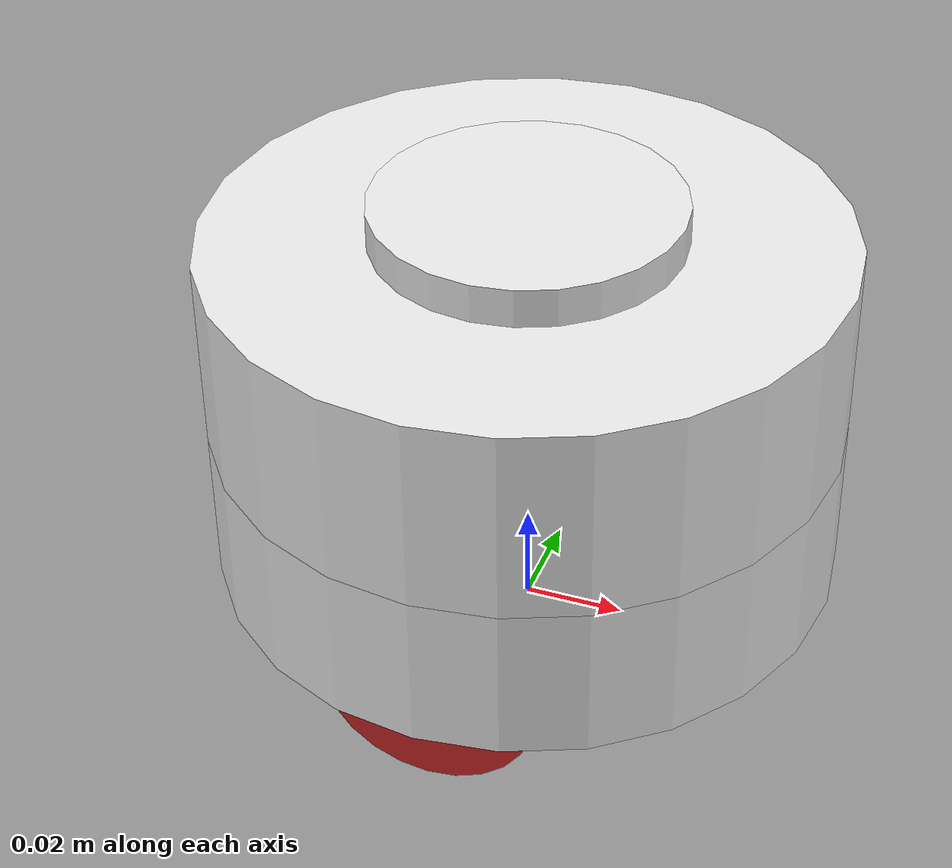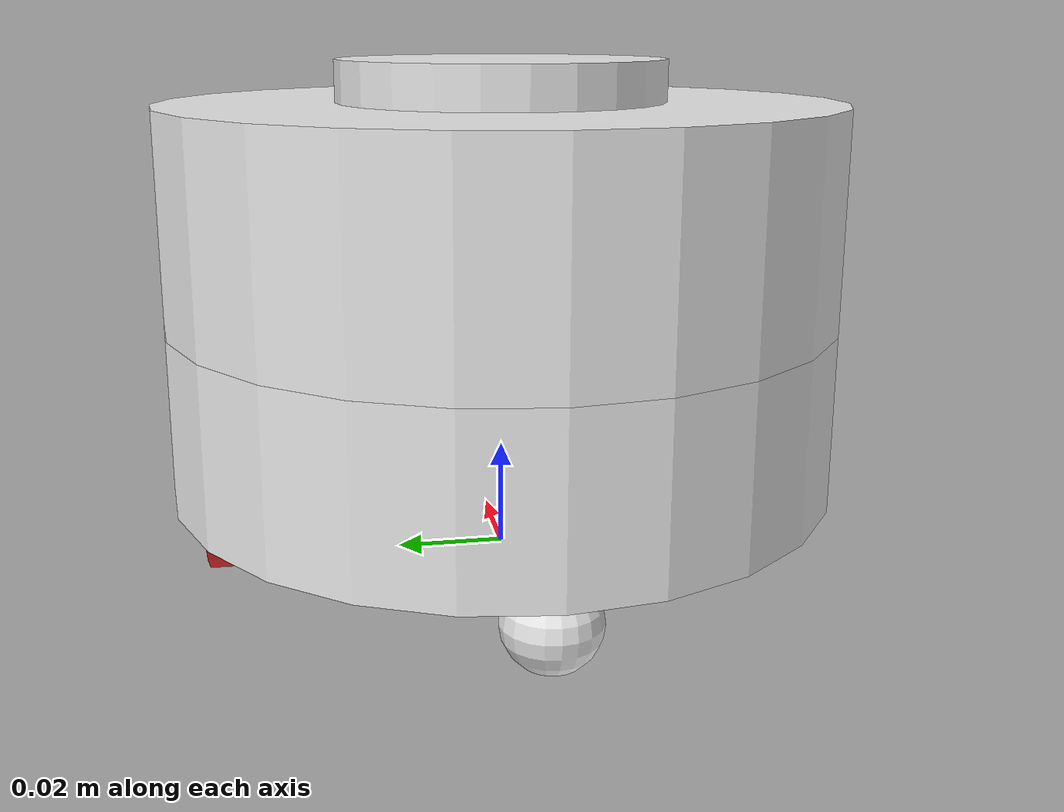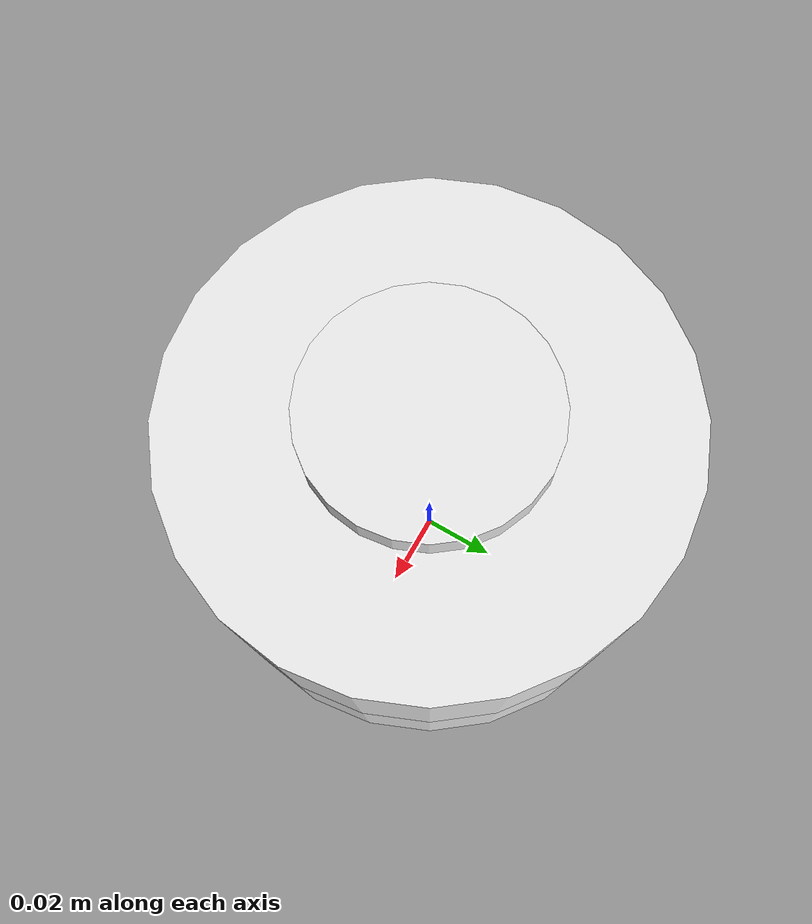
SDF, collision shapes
<sdf version='1.11'>
  <model name='makerspet_mini'>
    <link name='base_footprint'>
      <inertial>
        <pose>-0.0065000000000000006 4.5486881111187414e-19 0.042842857142857141 0 0 0</pose>
        <mass>0.69999999999999996</mass>
        <inertia>
          <ixx>0.00098287151428571402</ixx>
          <ixy>1.4407969591968601e-20</ixy>
          <ixz>-2.6660000000000019e-05</ixz>
          <iyy>0.001413646514285714</iyy>
          <iyz>-5.9552505053259861e-20</iyz>
          <izz>0.00063588000000000002</izz>
        </inertia>
      </inertial>
      <collision name='base_footprint_fixed_joint_lump__base_link_collision'>
        <pose>0 0 0.0309 0 0 0</pose>
        <geometry>
          <cylinder>
            <length>0.032000000000000001</length>
            <radius>0.062</radius>
          </cylinder>
        </geometry>
        <surface>
          <contact>
            <ode/>
          </contact>
          <friction>
            <ode/>
          </friction>
        </surface>
      </collision>
      <collision name='base_footprint_fixed_joint_lump__caster_link_collision_1'>
        <pose>-0.050999999999999997 0 0.0085000000000000006 0 0 0</pose>
        <geometry>
          <sphere>
            <radius>0.0085000000000000006</radius>
          </sphere>
        </geometry>
        <surface>
          <contact>
            <ode/>
          </contact>
          <friction>
            <ode>
              <mu>0.20000000000000001</mu>
              <mu2>0.20000000000000001</mu2>
            </ode>
          </friction>
        </surface>
      </collision>
      <collision name='base_footprint_fixed_joint_lump__head_link_collision_2'>
        <pose>0 0 0.066299999999999998 0 0 0</pose>
        <geometry>
          <cylinder>
            <length>0.038800000000000001</length>
            <radius>0.062</radius>
          </cylinder>
        </geometry>
        <surface>
          <contact>
            <ode/>
          </contact>
          <friction>
            <ode/>
          </friction>
        </surface>
      </collision>
      <collision name='base_footprint_fixed_joint_lump__base_scan_collision_3'>
        <pose>0 0 0.085299999999999987 3.1415926535897931 -1.224646799147353e-16 3.1415926535897931</pose>
        <geometry>
          <cylinder>
            <length>0.016</length>
            <radius>0.029999999999999999</radius>
          </cylinder>
        </geometry>
        <surface>
          <contact>
            <ode/>
          </contact>
          <friction>
            <ode/>
          </friction>
        </surface>
      </collision>
      <collision name='base_footprint_fixed_joint_lump__scan_motor_collision_4'>
        <pose>-0.040000000000000001 0 0.07329999999999999 0 2.4492935982947059e-16 0</pose>
        <geometry>
          <cylinder>
            <length>0.01</length>
            <radius>0.01</radius>
          </cylinder>
        </geometry>
      </collision>
      <visual name='base_footprint_fixed_joint_lump__base_link_visual'>
        <pose>0 0 0.0309 0 0 0</pose>
        <geometry>
          <cylinder>
            <length>0.032000000000000001</length>
            <radius>0.062</radius>
          </cylinder>
        </geometry>
        <material>
          <script>
            <name>Gazebo/White</name>
            <uri>file://media/materials/scripts/gazebo.material</uri>
          </script>
          <diffuse>1 1 1 1</diffuse>
          <ambient>1 1 1 1</ambient>
        </material>
      </visual>
      <visual name='base_footprint_fixed_joint_lump__caster_link_visual_1'>
        <pose>-0.050999999999999997 0 0.0085000000000000006 0 0 0</pose>
        <geometry>
          <sphere>
            <radius>0.0085000000000000006</radius>
          </sphere>
        </geometry>
        <material>
          <script>
            <name>Gazebo/White</name>
            <uri>file://media/materials/scripts/gazebo.material</uri>
          </script>
          <diffuse>1 1 1 1</diffuse>
          <ambient>1 1 1 1</ambient>
        </material>
      </visual>
      <visual name='base_footprint_fixed_joint_lump__head_link_visual_2'>
        <pose>0 0 0.046899999999999997 0 0 0</pose>
        <geometry>
          <mesh>
            <scale>0.00012400000000000001 0.00012400000000000001 7.7600000000000002e-05</scale>
            <uri>model://makerspet_mini/mesh/hemisphere.stl</uri>
          </mesh>
        </geometry>
        <material>
          <script>
            <name>Gazebo/Red</name>
            <uri>file://media/materials/scripts/gazebo.material</uri>
          </script>
          <diffuse>1 0 0 1</diffuse>
          <ambient>1 0 0 1</ambient>
        </material>
      </visual>
      <visual name='base_footprint_fixed_joint_lump__base_scan_visual_3'>
        <pose>0 0 0.085299999999999987 3.1415926535897931 -1.224646799147353e-16 3.1415926535897931</pose>
        <geometry>
          <cylinder>
            <length>0.016</length>
            <radius>0.029999999999999999</radius>
          </cylinder>
        </geometry>
        <material>
          <script>
            <name>Gazebo/Black</name>
            <uri>file://media/materials/scripts/gazebo.material</uri>
          </script>
          <diffuse>0 0 0 1</diffuse>
          <ambient>0 0 0 1</ambient>
        </material>
      </visual>
      <visual name='base_footprint_fixed_joint_lump__scan_motor_visual_4'>
        <pose>-0.040000000000000001 0 0.07329999999999999 0 2.4492935982947059e-16 0</pose>
        <geometry>
          <cylinder>
            <length>0.01</length>
            <radius>0.01</radius>
          </cylinder>
        </geometry>
        <material>
          <diffuse>0 0 0 1</diffuse>
          <ambient>0 0 0 1</ambient>
        </material>
      </visual>
      <sensor name='laser_scan_sensor' type='gpu_lidar'>
        <visualize>false</visualize>
        <always_on>true</always_on>
        <update_rate>5</update_rate>
        <topic>scan</topic>
        <lidar>
          <scan>
            <horizontal>
              <samples>360</samples>
              <resolution>1</resolution>
              <min_angle>-3.1400000000000001</min_angle>
              <max_angle>3.1400000000000001</max_angle>
            </horizontal>
          </scan>
          <range>
            <min>0.10000000000000001</min>
            <max>10</max>
            <resolution>0.02</resolution>
          </range>
          <noise>
            <type>gaussian</type>
            <mean>0</mean>
            <stddev>0.01</stddev>
          </noise>
        </lidar>
        <pose>0 0 0.085300000000000001 3.1415899999999999 -1.2246499999993207e-16 3.1415899999999999</pose>
      </sensor>
    </link>
    <joint name='wheel_left_joint' type='revolute'>
      <pose relative_to='base_footprint'>0 0.052521499999999999 0.021499999999999998 -1.5707963267948959 0 0</pose>
      <parent>base_footprint</parent>
      <child>wheel_left_link</child>
      <axis>
        <xyz>0 0 1</xyz>
        <limit>
          <lower>-inf</lower>
          <upper>inf</upper>
        </limit>
        <dynamics>
          <spring_reference>0</spring_reference>
          <spring_stiffness>0</spring_stiffness>
        </dynamics>
      </axis>
    </joint>
    <link name='wheel_left_link'>
      <pose relative_to='wheel_left_joint'>0 0 0 0 0 0</pose>
      <inertial>
        <pose>0 0 0 1.5707963267948959 0 0</pose>
        <mass>0.050000000000000003</mass>
        <inertia>
          <ixx>5.9041666666666667e-06</ixx>
          <ixy>0</ixy>
          <ixz>0</ixz>
          <iyy>5.9041666666666667e-06</iyy>
          <iyz>0</iyz>
          <izz>1.155625e-05</izz>
        </inertia>
      </inertial>
      <collision name='wheel_left_link_collision'>
        <pose>0 0 0 0 0 0</pose>
        <geometry>
          <cylinder>
            <length>0.0054999999999999997</length>
            <radius>0.021499999999999998</radius>
          </cylinder>
        </geometry>
        <surface>
          <contact>
            <ode/>
          </contact>
          <friction>
            <ode>
              <mu>0.20000000000000001</mu>
              <mu2>0.20000000000000001</mu2>
            </ode>
          </friction>
        </surface>
      </collision>
      <visual name='wheel_left_link_visual'>
        <pose>0 0 0 0 0 0</pose>
        <geometry>
          <cylinder>
            <length>0.0054999999999999997</length>
            <radius>0.021499999999999998</radius>
          </cylinder>
        </geometry>
        <material>
          <script>
            <name>Gazebo/Red</name>
            <uri>file://media/materials/scripts/gazebo.material</uri>
          </script>
          <diffuse>1 0 0 1</diffuse>
          <ambient>1 0 0 1</ambient>
        </material>
      </visual>
    </link>
    <joint name='wheel_right_joint' type='revolute'>
      <pose relative_to='base_footprint'>0 -0.052521499999999999 0.021499999999999998 -1.5707963267948959 0 0</pose>
      <parent>base_footprint</parent>
      <child>wheel_right_link</child>
      <axis>
        <xyz>0 0 1</xyz>
        <limit>
          <lower>-inf</lower>
          <upper>inf</upper>
        </limit>
        <dynamics>
          <spring_reference>0</spring_reference>
          <spring_stiffness>0</spring_stiffness>
        </dynamics>
      </axis>
    </joint>
    <link name='wheel_right_link'>
      <pose relative_to='wheel_right_joint'>0 0 0 0 0 0</pose>
      <inertial>
        <pose>0 0 0 1.5707963267948959 0 0</pose>
        <mass>0.050000000000000003</mass>
        <inertia>
          <ixx>5.9041666666666667e-06</ixx>
          <ixy>0</ixy>
          <ixz>0</ixz>
          <iyy>5.9041666666666667e-06</iyy>
          <iyz>0</iyz>
          <izz>1.155625e-05</izz>
        </inertia>
      </inertial>
      <collision name='wheel_right_link_collision'>
        <pose>0 0 0 0 0 0</pose>
        <geometry>
          <cylinder>
            <length>0.0054999999999999997</length>
            <radius>0.021499999999999998</radius>
          </cylinder>
        </geometry>
        <surface>
          <contact>
            <ode/>
          </contact>
          <friction>
            <ode>
              <mu>0.20000000000000001</mu>
              <mu2>0.20000000000000001</mu2>
            </ode>
          </friction>
        </surface>
      </collision>
      <visual name='wheel_right_link_visual'>
        <pose>0 0 0 0 0 0</pose>
        <geometry>
          <cylinder>
            <length>0.0054999999999999997</length>
            <radius>0.021499999999999998</radius>
          </cylinder>
        </geometry>
        <material>
          <script>
            <name>Gazebo/Red</name>
            <uri>file://media/materials/scripts/gazebo.material</uri>
          </script>
          <diffuse>1 0 0 1</diffuse>
          <ambient>1 0 0 1</ambient>
        </material>
      </visual>
    </link>
    <plugin name='gz::sim::systems::DiffDrive' filename='gz-sim-diff-drive-system'>
      <left_joint>wheel_left_joint</left_joint>
      <right_joint>wheel_right_joint</right_joint>
      <wheel_separation>0.105043</wheel_separation>
      <wheel_diameter>0.043</wheel_diameter>
      <max_wheel_torque>0.171616375</max_wheel_torque>
      <max_wheel_acceleration>1</max_wheel_acceleration>
      <topic>cmd_vel</topic>
    </plugin>
    <plugin name='gz::sim::systems::OdometryPublisher' filename='gz-sim-odometry-publisher-system'>
      <odom_frame>odom</odom_frame>
      <robot_base_frame>base_footprint</robot_base_frame>
      <odom_publish_frequency>50</odom_publish_frequency>
      <odom_topic>/odom</odom_topic>
      <tf_topic>/tf</tf_topic>
      <dimensions>2</dimensions>
    </plugin>
    <plugin name='gz::sim::systems::JointStatePublisher' filename='gz-sim-joint-state-publisher-system'>
      <topic>joint_states</topic>
      <joint_name>wheel_left_joint</joint_name>
      <joint_name>wheel_right_joint</joint_name>
    </plugin>
    <frame name='caster_joint' attached_to='base_link'>
      <pose>-0.050999999999999997 0 -0.0063999999999999986 0 0 0</pose>
    </frame>
    <frame name='caster_link' attached_to='caster_joint'>
      <pose>0 0 0 0 0 0</pose>
    </frame>
    <frame name='head_joint' attached_to='base_link'>
      <pose>0 0 0.032000000000000001 0 0 0</pose>
    </frame>
    <frame name='head_link' attached_to='head_joint'>
      <pose>0 0 0 0 0 0</pose>
    </frame>
    <frame name='scan_motor_joint' attached_to='base_scan'>
      <pose>0.040000000000000001 0 0.012 3.1415926535897931 -1.224646799147353e-16 3.1415926535897931</pose>
    </frame>
    <frame name='scan_motor' attached_to='scan_motor_joint'>
      <pose>0 0 0 0 0 0</pose>
    </frame>
    <frame name='scan_joint' attached_to='base_link'>
      <pose>0 0 0.07039999999999999 3.1415926535897931 -1.224646799147353e-16 3.1415926535897931</pose>
    </frame>
    <frame name='base_scan' attached_to='scan_joint'>
      <pose>0 0 0 0 0 0</pose>
    </frame>
    <frame name='base_joint' attached_to='base_footprint'>
      <pose>0 0 0.0149 0 0 0</pose>
    </frame>
    <frame name='base_link' attached_to='base_joint'>
      <pose>0 0 0 0 0 0</pose>
    </frame>
  </model>
</sdf>
